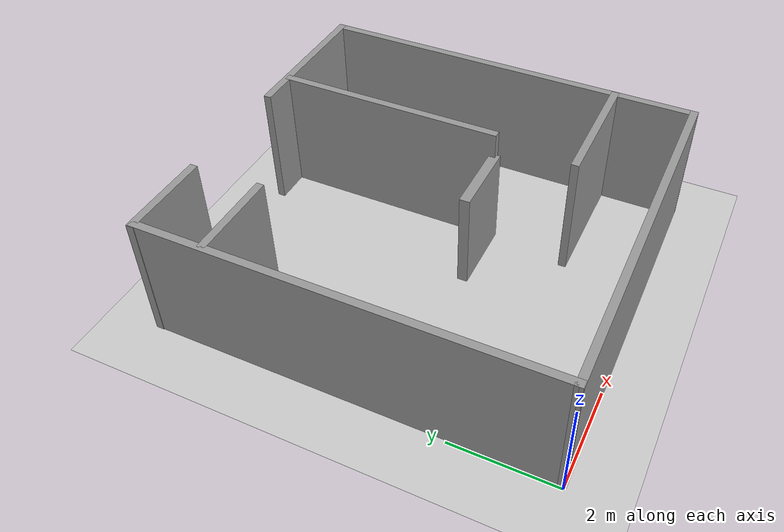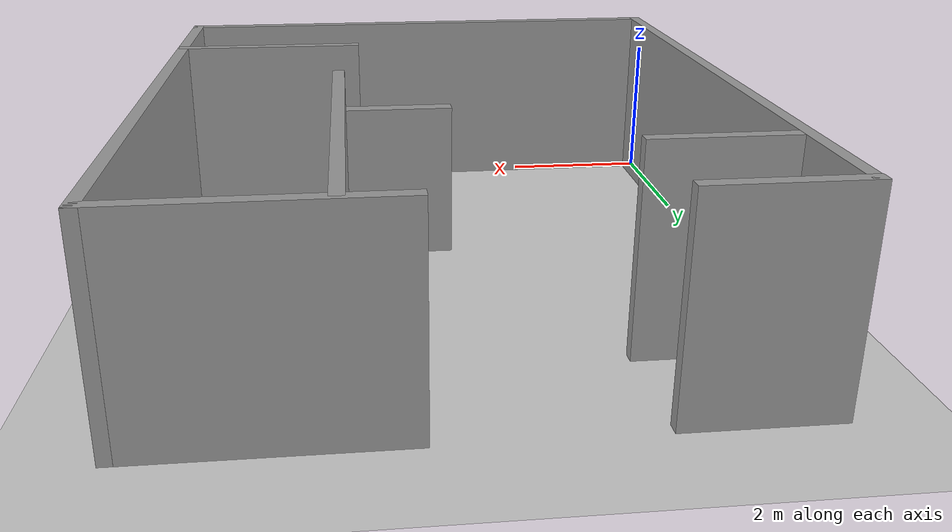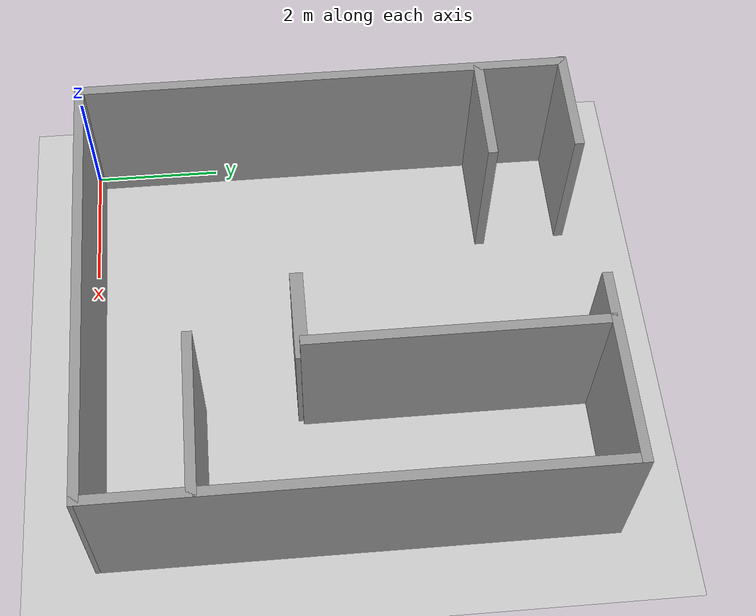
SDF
<sdf version="1.7">
 <world name="default">
  <light name="sun" type="directional">
   <pose>0 0 10 0 -0 0</pose>
   <diffuse>0.8 0.8 0.8 1</diffuse>
   <specular>0.2 0.2 0.2 1</specular>
   <attenuation>
    <range>1000</range>
    <constant>0.9</constant>
    <linear>0.01</linear>
    <quadratic>0.001</quadratic>
   </attenuation>
   <direction>-0.5 0.1 -0.9</direction>
   <spot><inner_angle>0</inner_angle><outer_angle>0</outer_angle><falloff>0</falloff></spot>
  </light>
  <model name="ground_plane">
   <static>1</static>
   <link name="link">
    <collision name="collision">
     <geometry><plane><normal>0 0 1</normal><size>100 100</size></plane></geometry>
     <surface><friction><ode><mu>100</mu><mu2>50</mu2></ode></friction></surface>
    </collision>
    <visual name="visual">
     <cast_shadows>0</cast_shadows>
     <geometry><plane><normal>0 0 1</normal><size>100 100</size></plane></geometry>
     <material>
      <script><uri>file://media/materials/scripts/gazebo.material</uri><name>Gazebo/Grey</name></script>
     </material>
    </visual>
   </link>
  </model>
  <gravity>0 0 -9.8</gravity>
  <magnetic_field>6e-06 2.3e-05 -4.2e-05</magnetic_field>
  <atmosphere type="adiabatic"/>
  <physics type="ode">
   <max_step_size>0.001</max_step_size>
   <real_time_factor>1</real_time_factor>
   <real_time_update_rate>1000</real_time_update_rate>
  </physics>
  <scene><ambient>0.4 0.4 0.4 1</ambient><background>0.7 0.7 0.7 1</background><shadows>1</shadows></scene>
  <audio><device>default</device></audio>
  <spherical_coordinates>
   <surface_model>EARTH_WGS84</surface_model>
   <latitude_deg>0</latitude_deg>
   <longitude_deg>0</longitude_deg>
   <elevation>0</elevation>
   <heading_deg>0</heading_deg>
  </spherical_coordinates>
  <model name="world">
   <pose>3.5702 5.48721 0 0 -0 0</pose>
   <link name="Door_0">
    <collision name="Door_0_Collision">
     <geometry><box><size>1.45 0.2 2</size></box></geometry>
     <pose>0 0 1 0 -0 0</pose>
    </collision>
    <visual name="Door_0_Visual">
     <pose>0 0 1 0 -0 0</pose>
     <geometry><box><size>1.45 0.2 2</size></box></geometry>
     <material>
      <script><uri>file://media/materials/scripts/gazebo.material</uri><name>Gazebo/Grey</name></script>
     </material>
    </visual>
    <pose>0.593685 -2.27734 0 0 -0 0</pose>
   </link>
   <link name="Wall_1">
    <collision name="Wall_1_Collision">
     <geometry><box><size>7.75 0.15 2.5</size></box></geometry>
     <pose>0 0 1.25 0 -0 0</pose>
    </collision>
    <visual name="Wall_1_Visual">
     <pose>0 0 1.25 0 -0 0</pose>
     <geometry><box><size>7.75 0.15 2.5</size></box></geometry>
     <material>
      <script><uri>file://media/materials/scripts/gazebo.material</uri><name>Gazebo/Grey</name></script>
      <ambient>1 1 1 1</ambient>
     </material>
     <meta><layer>0</layer></meta>
    </visual>
    <pose>3.46601 -1.61689 0 0 -0 -1.5708</pose>
   </link>
   <link name="Wall_11">
    <collision name="Wall_11_Collision">
     <geometry><box><size>1.75 0.15 2.5</size></box></geometry>
     <pose>0 0 1.25 0 -0 0</pose>
    </collision>
    <visual name="Wall_11_Visual">
     <pose>0 0 1.25 0 -0 0</pose>
     <geometry><box><size>1.75 0.15 2.5</size></box></geometry>
     <material>
      <script><uri>file://media/materials/scripts/gazebo.material</uri><name>Gazebo/Grey</name></script>
      <ambient>1 1 1 1</ambient>
     </material>
     <meta><layer>0</layer></meta>
    </visual>
    <pose>-2.60631 0.852664 0 0 -0 0</pose>
   </link>
   <link name="Wall_13">
    <collision name="Wall_13_Collision">
     <geometry><box><size>4.5 0.15 2.5</size></box></geometry>
     <pose>0 0 1.25 0 -0 0</pose>
    </collision>
    <visual name="Wall_13_Visual">
     <pose>0 0 1.25 0 -0 0</pose>
     <geometry><box><size>4.5 0.15 2.5</size></box></geometry>
     <material>
      <script><uri>file://media/materials/scripts/gazebo.material</uri><name>Gazebo/Grey</name></script>
      <ambient>1 1 1 1</ambient>
     </material>
     <meta><layer>0</layer></meta>
    </visual>
    <pose>1.30368 -0.052335 0 0 -0 -1.5708</pose>
   </link>
   <link name="Wall_15">
    <collision name="Wall_15_Collision">
     <geometry><box><size>2.5 0.15 2.5</size></box></geometry>
     <pose>0 0 1.25 0 -0 0</pose>
    </collision>
    <visual name="Wall_15_Visual">
     <pose>0 0 1.25 0 -0 0</pose>
     <geometry><box><size>2.5 0.15 2.5</size></box></geometry>
     <material>
      <script><uri>file://media/materials/scripts/gazebo.material</uri><name>Gazebo/Grey</name></script>
      <ambient>1 1 1 1</ambient>
     </material>
     <meta><layer>0</layer></meta>
    </visual>
    <pose>2.27868 -3.87733 0 0 -0 3.14159</pose>
   </link>
   <link name="Wall_2">
    <collision name="Wall_2_Collision">
     <geometry><box><size>7.07235 0.15 2.5</size></box></geometry>
     <pose>0 0 1.25 0 -0 0</pose>
    </collision>
    <visual name="Wall_2_Visual">
     <pose>0 0 1.25 0 -0 0</pose>
     <geometry><box><size>7.07235 0.15 2.5</size></box></geometry>
     <material>
      <script><uri>file://media/materials/scripts/gazebo.material</uri><name>Gazebo/Grey</name></script>
      <ambient>1 1 1 1</ambient>
     </material>
     <meta><layer>0</layer></meta>
    </visual>
    <pose>0.004845 -5.43211 0 0 -0 -3.1372</pose>
   </link>
   <link name="Wall_3">
    <collision name="Wall_3_Collision">
     <geometry><box><size>7.75 0.15 2.5</size></box></geometry>
     <pose>0 0 1.25 0 -0 0</pose>
    </collision>
    <visual name="Wall_3_Visual">
     <pose>0 0 1.25 0 -0 0</pose>
     <geometry><box><size>7.75 0.15 2.5</size></box></geometry>
     <material>
      <script><uri>file://media/materials/scripts/gazebo.material</uri><name>Gazebo/Grey</name></script>
      <ambient>1 1 1 1</ambient>
     </material>
     <meta><layer>0</layer></meta>
    </visual>
    <pose>-3.45632 -1.63733 0 0 -0 1.5708</pose>
   </link>
   <link name="Wall_5">
    <collision name="Wall_5_Collision">
     <geometry><box><size>3 0.15 2.5</size></box></geometry>
     <pose>0 0 1.25 0 -0 0</pose>
    </collision>
    <visual name="Wall_5_Visual">
     <pose>0 0 1.25 0 -0 0</pose>
     <geometry><box><size>3 0.15 2.5</size></box></geometry>
     <material>
      <script><uri>file://media/materials/scripts/gazebo.material</uri><name>Gazebo/Grey</name></script>
      <ambient>1 1 1 1</ambient>
     </material>
     <meta><layer>0</layer></meta>
    </visual>
    <pose>2.04101 2.18311 0 0 -0 3.14159</pose>
   </link>
   <link name="Wall_7">
    <collision name="Wall_7_Collision">
     <geometry><box><size>1.75 0.15 2.5</size></box></geometry>
     <pose>0 0 1.25 0 -0 0</pose>
    </collision>
    <visual name="Wall_7_Visual">
     <pose>0 0 1.25 0 -0 0</pose>
     <geometry><box><size>1.75 0.15 2.5</size></box></geometry>
     <material>
      <script><uri>file://media/materials/scripts/gazebo.material</uri><name>Gazebo/Grey</name></script>
      <ambient>1 1 1 1</ambient>
     </material>
     <meta><layer>0</layer></meta>
    </visual>
    <pose>-2.66632 2.19266 0 0 -0 0</pose>
   </link>
   <static>1</static>
  </model>
 </world>
</sdf>
